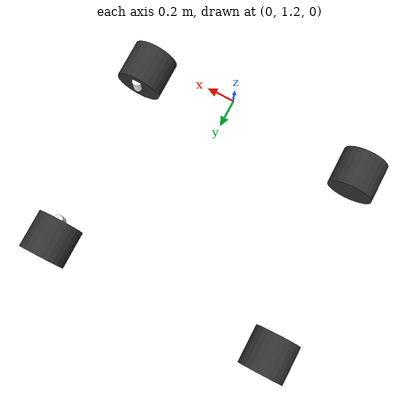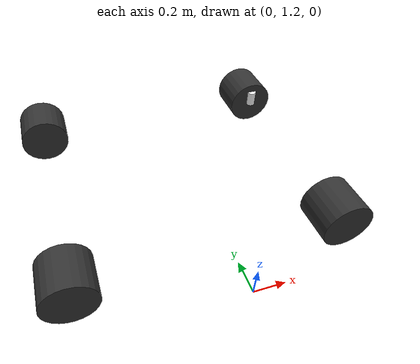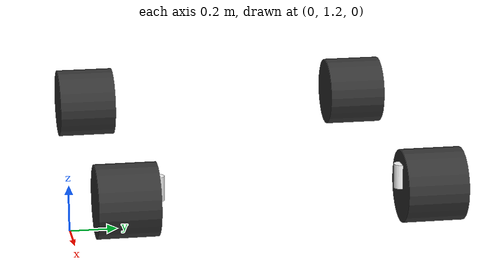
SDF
<?xml version='1.0'?>
<sdf version='1.9'>
  <model name='robot_steering_wheel'>
      <pose>0 2 0.325 0 -0 0</pose>

      <link name='chassis'>
        <pose>-0.151427 -0 0.250 0 -0 0</pose>
        <inertial>
          <mass>25</mass>
          <inertia>
            <ixx>0.126164</ixx>
            <ixy>0</ixy>
            <ixz>0</ixz>
            <iyy>0.416519</iyy>
            <iyz>0</iyz>
            <izz>0.481014</izz>
          </inertia>
        </inertial>
        <collision name='collision'>
          <geometry>
            <box>
              <size>2.01142 1 0.568726</size>
            </box>
          </geometry>
        </collision>
       	      <sensor name="imu_sensor" type="imu">
		<pose degrees="true">0 0 0 180 0 0</pose>
		<always_on>1</always_on>
		<update_rate>1000</update_rate>
	      </sensor>
	      <sensor name="air_pressure_sensor" type="air_pressure">
		<always_on>1</always_on>
		<update_rate>50</update_rate>
		<air_pressure>
		  <pressure>
		    <noise type="gaussian">
		      <mean>0</mean>
		      <stddev>0.01</stddev>
		    </noise>
		  </pressure>
		</air_pressure>
	      </sensor>
      </link>

      <link name='front_left_wheel'>
        <pose>0.554283 0.625029 -0.025 -1.5707 0 0</pose>
        <inertial>
          <mass>2</mass>
          <inertia>
            <ixx>0.145833</ixx>
            <ixy>0</ixy>
            <ixz>0</ixz>
            <iyy>0.145833</iyy>
            <iyz>0</iyz>
            <izz>0.125</izz>
          </inertia>
        </inertial>
        <visual name='visual'>
          <geometry>
            <cylinder>
              <length>0.25</length>
              <radius>0.15</radius>
            </cylinder>
          </geometry>
          <material>
            <ambient>0.2 0.2 0.2 1</ambient>
            <diffuse>0.2 0.2 0.2 1</diffuse>
            <specular>0.2 0.2 0.2 1</specular>
          </material>
        </visual>
        <collision name='collision'>
          <geometry>
            <cylinder>
              <length>0.25</length>
              <radius>0.15</radius>
            </cylinder>
          </geometry>
          <surface>
            <friction>
              <ode>
                <mu>0.5</mu>
                <mu2>1.0</mu2>
                <fdir1>0 0 1</fdir1>
              </ode>
              <bullet>
                <friction>0.5</friction>
                <friction2>1</friction2>
                <rolling_friction>0.1</rolling_friction>
              </bullet>
            </friction>
          </surface>
        </collision>
      </link>

      <link name='rear_left_wheel'>
        <pose>-0.957138 0.625029 -0.025 -1.5707 0 0</pose>
        <inertial>
          <mass>2</mass>
          <inertia>
            <ixx>0.145833</ixx>
            <ixy>0</ixy>
            <ixz>0</ixz>
            <iyy>0.145833</iyy>
            <iyz>0</iyz>
            <izz>0.125</izz>
          </inertia>
        </inertial>
        <visual name='visual'>
          <geometry>
            <cylinder>
              <length>0.25</length>
              <radius>0.15</radius>
            </cylinder>
          </geometry>
          <material>
            <ambient>0.2 0.2 0.2 1</ambient>
            <diffuse>0.2 0.2 0.2 1</diffuse>
            <specular>0.2 0.2 0.2 1</specular>
          </material>
        </visual>
        <collision name='collision'>
          <geometry>
            <cylinder>
              <length>0.25</length>
              <radius>0.15</radius>
            </cylinder>
          </geometry>
          <surface>
            <friction>
              <ode>
                <mu>0.5</mu>
                <mu2>1.0</mu2>
                <fdir1>0 0 1</fdir1>
              </ode>
              <bullet>
                <friction>0.5</friction>
                <friction2>1</friction2>
                <rolling_friction>0.5</rolling_friction>
              </bullet>
            </friction>
          </surface>
        </collision>
      </link>

      <link name='front_right_wheel'>
        <pose>0.554282 -0.625029 -0.025 -1.5707 0 0</pose>
        <inertial>
          <mass>2</mass>
          <inertia>
            <ixx>0.145833</ixx>
            <ixy>0</ixy>
            <ixz>0</ixz>
            <iyy>0.145833</iyy>
            <iyz>0</iyz>
            <izz>0.125</izz>
          </inertia>
        </inertial>
        <visual name='visual'>
          <geometry>
            <cylinder>
              <length>0.25</length>
              <radius>0.15</radius>
            </cylinder>
          </geometry>
          <material>
            <ambient>0.2 0.2 0.2 1</ambient>
            <diffuse>0.2 0.2 0.2 1</diffuse>
            <specular>0.2 0.2 0.2 1</specular>
          </material>
        </visual>
        <collision name='collision'>
          <geometry>
            <cylinder>
              <length>0.25</length>
              <radius>0.15</radius>
            </cylinder>
          </geometry>
          <surface>
            <friction>
              <ode>
                <mu>0.5</mu>
                <mu2>1.0</mu2>
                <fdir1>0 0 1</fdir1>
              </ode>
              <bullet>
                <friction>0.5</friction>
                <friction2>1</friction2>
                <rolling_friction>0.1</rolling_friction>
              </bullet>
            </friction>
          </surface>
        </collision>
      </link>

      <link name='rear_right_wheel'>
        <pose>-0.957138 -0.625029 -0.025 -1.5707 0 0</pose>
        <inertial>
          <mass>2</mass>
          <inertia>
            <ixx>0.145833</ixx>
            <ixy>0</ixy>
            <ixz>0</ixz>
            <iyy>0.145833</iyy>
            <iyz>0</iyz>
            <izz>0.125</izz>
          </inertia>
        </inertial>
        <visual name='visual'>
          <geometry>
            <cylinder>
              <length>0.25</length>
              <radius>0.15</radius>
            </cylinder>
          </geometry>
          <material>
            <ambient>0.2 0.2 0.2 1</ambient>
            <diffuse>0.2 0.2 0.2 1</diffuse>
            <specular>0.2 0.2 0.2 1</specular>
          </material>
        </visual>
        <collision name='collision'>
          <geometry>
            <cylinder>
              <length>0.25</length>
              <radius>0.15</radius>
            </cylinder>
          </geometry>
          <surface>
            <friction>
              <ode>
                <mu>0.5</mu>
                <mu2>1.0</mu2>
                <fdir1>0 0 1</fdir1>
              </ode>
              <bullet>
                <friction>0.5</friction>
                <friction2>1</friction2>
                <rolling_friction>0.5</rolling_friction>
              </bullet>
            </friction>
          </surface>
        </collision>
      </link>

      <link name="front_left_wheel_steering_link">
        <pose>0.554283 0.5 0.02 0 0 0</pose>
        <inertial>
          <mass>0.5</mass>
          <inertia>
            <ixx>0.0153</ixx>
            <iyy>0.025</iyy>
            <izz>0.0153</izz>
          </inertia>
        </inertial>
        <visual name="steering_link_visual">
          <pose>0 0 0 0 0 0</pose>
          <geometry>
            <cylinder>
              <length>0.1</length>
              <radius>0.03</radius>
            </cylinder>
          </geometry>
          <material>
            <ambient>1 1 1</ambient>
            <diffuse>1 1 1</diffuse>
          </material>
        </visual>
      </link>

      <link name="front_right_wheel_steering_link">
        <pose>0.554283 -0.5 0.02 0 0 0</pose>
        <inertial>
          <mass>0.5</mass>
          <inertia>
            <ixx>0.0153</ixx>
            <iyy>0.025</iyy>
            <izz>0.0153</izz>
          </inertia>
        </inertial>
        <visual name="steering_link_visual">
          <pose>0 0 0 0 0 0</pose>
          <geometry>
            <cylinder>
              <length>0.1</length>
              <radius>0.03</radius>
            </cylinder>
          </geometry>
          <material>
            <ambient>1 1 1</ambient>
            <diffuse>1 1 1</diffuse>
          </material>
        </visual>
      </link>

      <joint name="front_left_wheel_steering_joint" type="revolute">
        <child>front_left_wheel_steering_link</child>
        <parent>chassis</parent>
        <axis>
          <xyz>0 0 1</xyz>
          <limit>
            <lower>-0.6</lower>
            <upper>+0.6</upper>
            <velocity>1.0</velocity>
            <effort>25</effort>
          </limit>
          <use_parent_model_frame>1</use_parent_model_frame>
        </axis>
      </joint>

      <joint name="front_right_wheel_steering_joint" type="revolute">
        <parent>chassis</parent>
        <child>front_right_wheel_steering_link</child>
        <axis>
          <xyz>0 0 1</xyz>
          <limit>
            <lower>-0.6</lower>
            <upper>+0.6</upper>
            <velocity>1.0</velocity>
            <effort>25</effort>
          </limit>
        </axis>
      </joint>

      <joint name='front_left_wheel_joint' type='revolute'>
        <parent>front_left_wheel_steering_link</parent>
        <child>front_left_wheel</child>
        <axis>
          <xyz>0 0 1</xyz>
          <limit>
            <lower>-1.79769e+308</lower>
            <upper>1.79769e+308</upper>
          </limit>
        </axis>
      </joint>

      <joint name='front_right_wheel_joint' type='revolute'>
        <parent>front_right_wheel_steering_link</parent>
        <child>front_right_wheel</child>
        <axis>
          <xyz>0 0 1</xyz>
          <limit>
            <lower>-1.79769e+308</lower>
            <upper>1.79769e+308</upper>
          </limit>
        </axis>
      </joint>

      <joint name='rear_left_wheel_joint' type='revolute'>
        <parent>chassis</parent>
        <child>rear_left_wheel</child>
        <axis>
          <xyz>0 0 1</xyz>
          <limit>
            <lower>-1.79769e+308</lower>
            <upper>1.79769e+308</upper>
          </limit>
        </axis>
      </joint>

      <joint name='rear_right_wheel_joint' type='revolute'>
        <parent>chassis</parent>
        <child>rear_right_wheel</child>
        <axis>
          <xyz>0 0 1</xyz>
          <limit>
            <lower>-1.79769e+308</lower>
            <upper>1.79769e+308</upper>
          </limit>
        </axis>
      </joint>

	<plugin name="ArduPilotPlugin"
	  filename="ArduPilotPlugin">
	  <fdm_addr>127.0.0.1</fdm_addr>
	  <fdm_port_in>9012</fdm_port_in>
	  <connectionTimeoutMaxCount>5</connectionTimeoutMaxCount>
	  <lock_step>1</lock_step>
	  <gazeboXYZToNED degrees="true">0 0 0 180 0 90</gazeboXYZToNED>
	  <modelXYZToAirplaneXForwardZDown degrees="true">0 0 0 180 0 0</modelXYZToAirplaneXForwardZDown>
	  <imuName>chassis::imu_sensor</imuName>

	  <control channel="0">
            <jointName>rear_left_wheel_joint</jointName>
            <useForce>1</useForce>
            <multiplier>100.0</multiplier>
            <offset>-0.5</offset>
            <servo_min>1000</servo_min>
            <servo_max>2000</servo_max>
            <type>VELOCITY</type>
            <p_gain>1</p_gain>
            <i_gain>0</i_gain>
            <d_gain>0</d_gain>
            <i_max>1</i_max>
            <i_min>0</i_min>
            <cmd_max>50.0</cmd_max>
            <cmd_min>-50.0</cmd_min>
        </control>

        <control channel="0">
            <jointName>rear_right_wheel_joint</jointName>
            <useForce>1</useForce>
            <multiplier>100.0</multiplier>
            <offset>-0.5</offset>
            <servo_min>1000</servo_min>
            <servo_max>2000</servo_max>
            <type>VELOCITY</type>
            <p_gain>1</p_gain>
            <i_gain>0</i_gain>
            <d_gain>0</d_gain>
            <i_max>1</i_max>
            <i_min>0</i_min>
            <cmd_max>50.0</cmd_max>
            <cmd_min>-50.0</cmd_min>
        </control>

        <control channel="2">
            <jointName>front_left_steer_joint</jointName>
            <useForce>1</useForce>
            <multiplier>1.570796327</multiplier>
            <offset>-0.5</offset>
            <servo_min>1000</servo_min>
            <servo_max>2000</servo_max>
            <type>POSITION</type>
            <p_gain>2.0</p_gain>
            <i_gain>0</i_gain>
            <d_gain>0.1</d_gain>
            <i_max>1</i_max>
            <i_min>0</i_min>
            <cmd_max>0.785398163</cmd_max>
            <cmd_min>-0.785398163</cmd_min>
        </control>

        <control channel="2">
            <jointName>front_right_steer_joint</jointName>
            <useForce>1</useForce>
            <multiplier>1.570796327</multiplier>
            <offset>-0.5</offset>
            <servo_min>1000</servo_min>
            <servo_max>2000</servo_max>
            <type>POSITION</type>
            <p_gain>2.0</p_gain>
            <i_gain>0</i_gain>
            <d_gain>0.1</d_gain>
            <i_max>1</i_max>
            <i_min>0</i_min>
            <cmd_max>0.785398163</cmd_max>
            <cmd_min>-0.785398163</cmd_min>
        </control>

	</plugin>

    </model>
</sdf>
